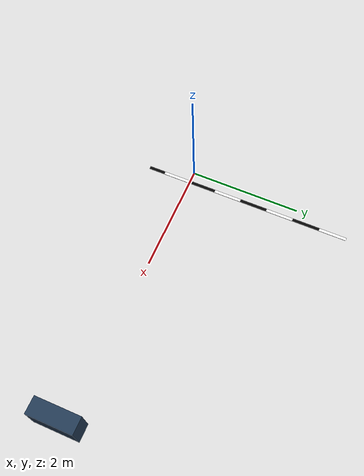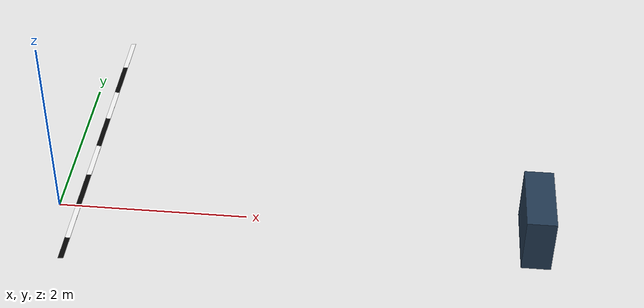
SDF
<sdf version="1.6">
 <world name="ifac_roboracer">
  <model name="ackermann_start_line">
   <static>true</static>
   <link name="start_line_link">
    <visual name="start_line_white_minus_01">
     <pose>0.2 -0.25 0.003 0 0 0</pose>
     <geometry><box><size>0.055 0.5 0.006</size></box></geometry>
     <material>
      <ambient>0.95 0.95 0.95 1</ambient>
      <diffuse>0.95 0.95 0.95 1</diffuse>
      <specular>0 0 0 1</specular>
     </material>
     <cast_shadows>false</cast_shadows>
    </visual>
    <visual name="start_line_black_minus_02">
     <pose>0.2 -0.65 0.003 0 0 0</pose>
     <geometry><box><size>0.055 0.3 0.006</size></box></geometry>
     <material>
      <ambient>0.02 0.02 0.02 1</ambient>
      <diffuse>0.02 0.02 0.02 1</diffuse>
      <specular>0 0 0 1</specular>
     </material>
     <cast_shadows>false</cast_shadows>
    </visual>
    <visual name="start_line_black_00">
     <pose>0.2 0.25 0.003 0 0 0</pose>
     <geometry><box><size>0.055 0.5 0.006</size></box></geometry>
     <material>
      <ambient>0.02 0.02 0.02 1</ambient>
      <diffuse>0.02 0.02 0.02 1</diffuse>
      <specular>0 0 0 1</specular>
     </material>
     <cast_shadows>false</cast_shadows>
    </visual>
    <visual name="start_line_white_01">
     <pose>0.2 0.75 0.003 0 0 0</pose>
     <geometry><box><size>0.055 0.5 0.006</size></box></geometry>
     <material>
      <ambient>0.95 0.95 0.95 1</ambient>
      <diffuse>0.95 0.95 0.95 1</diffuse>
      <specular>0 0 0 1</specular>
     </material>
     <cast_shadows>false</cast_shadows>
    </visual>
    <visual name="start_line_black_02">
     <pose>0.2 1.25 0.003 0 0 0</pose>
     <geometry><box><size>0.055 0.5 0.006</size></box></geometry>
     <material>
      <ambient>0.02 0.02 0.02 1</ambient>
      <diffuse>0.02 0.02 0.02 1</diffuse>
      <specular>0 0 0 1</specular>
     </material>
     <cast_shadows>false</cast_shadows>
    </visual>
    <visual name="start_line_white_03">
     <pose>0.2 1.75 0.003 0 0 0</pose>
     <geometry><box><size>0.055 0.5 0.006</size></box></geometry>
     <material>
      <ambient>0.95 0.95 0.95 1</ambient>
      <diffuse>0.95 0.95 0.95 1</diffuse>
      <specular>0 0 0 1</specular>
     </material>
     <cast_shadows>false</cast_shadows>
    </visual>
    <visual name="start_line_black_04">
     <pose>0.2 2.25 0.003 0 0 0</pose>
     <geometry><box><size>0.055 0.5 0.006</size></box></geometry>
     <material>
      <ambient>0.02 0.02 0.02 1</ambient>
      <diffuse>0.02 0.02 0.02 1</diffuse>
      <specular>0 0 0 1</specular>
     </material>
     <cast_shadows>false</cast_shadows>
    </visual>
    <visual name="start_line_white_05">
     <pose>0.2 2.75 0.003 0 0 0</pose>
     <geometry><box><size>0.055 0.5 0.006</size></box></geometry>
     <material>
      <ambient>0.95 0.95 0.95 1</ambient>
      <diffuse>0.95 0.95 0.95 1</diffuse>
      <specular>0 0 0 1</specular>
     </material>
     <cast_shadows>false</cast_shadows>
    </visual>
   </link>
  </model>
  <model name="map1_obstacle_1">
   <static>true</static>
   <pose>5 -0.087847578 0.3 0 0 0</pose>
   <link name="obstacle_link">
    <collision name="obstacle_collision"><geometry><box><size>0.3 0.8 0.6</size></box></geometry></collision>
    <visual name="obstacle_visual">
     <geometry><box><size>0.3 0.8 0.6</size></box></geometry>
     <cast_shadows>false</cast_shadows>
     <material>
      <ambient>0.13 0.22 0.32 1</ambient>
      <diffuse>0.13 0.22 0.32 1</diffuse>
      <specular>0 0 0 1</specular>
     </material>
    </visual>
   </link>
  </model>
 </world>
</sdf>
